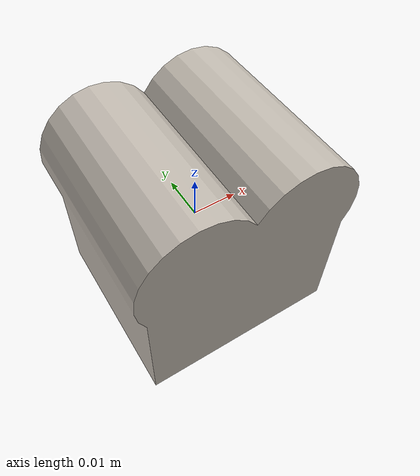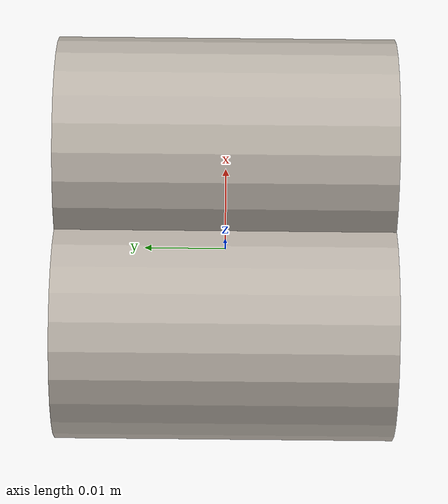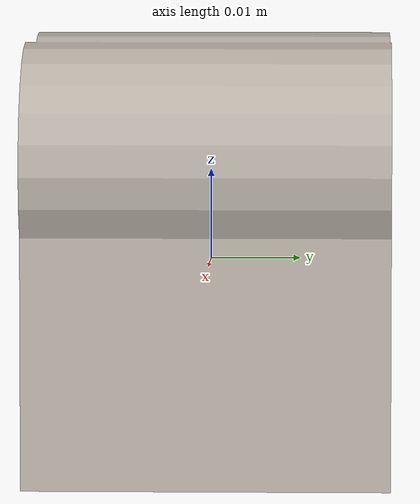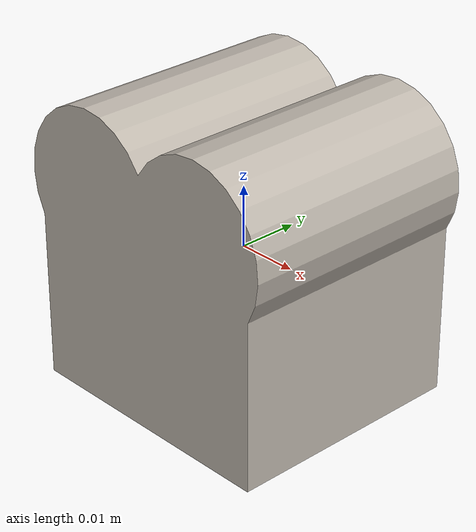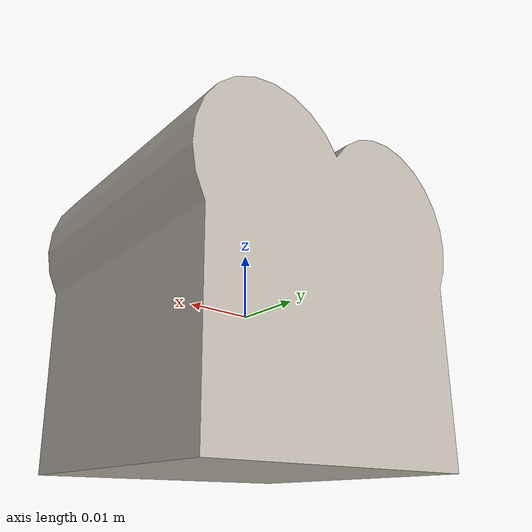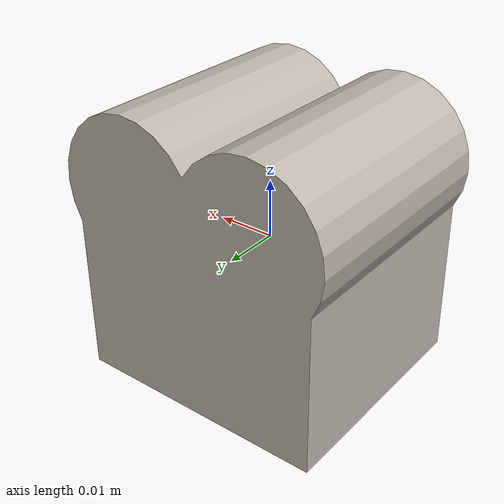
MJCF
<mujoco model="bread">
  <asset>
    <mesh file="meshes/bread.stl" name="bread_mesh" scale="0.8 0.8 0.8"/>
    <texture file="../textures/bread.png" type="2d" name="tex-bread" />
    <material name="bread" reflectance="0.7" texrepeat="15 15" texture="tex-bread" texuniform="true"/>
  </asset>
  <worldbody>
    <body>
      <body name="object">

          <geom pos="0 0 0" size="0.024 0.020 0.025" type="box" rgba="0.8 0.8 0.8 0.0" solimp="0.998 0.998 0.001" solref="0.02 1" density="100" friction="0.95 0.3 0.1" group="0" condim="4"/>
          <geom pos="0 0 0" mesh="bread_mesh" type="mesh" material="bread" conaffinity="0" contype="0"  group="1" mass="0.0001"/>
      </body>
      <site rgba="0 0 0 0" size="0.005" pos="0 0 -0.045" name="bottom_site"/>
      <site rgba="0 0 0 0" size="0.005" pos="0 0 0.03" name="top_site"/>
      <site rgba="0 0 0 0" size="0.005" pos="0.03 0.03 0" name="horizontal_radius_site"/>
    </body>
  </worldbody>
</mujoco>
